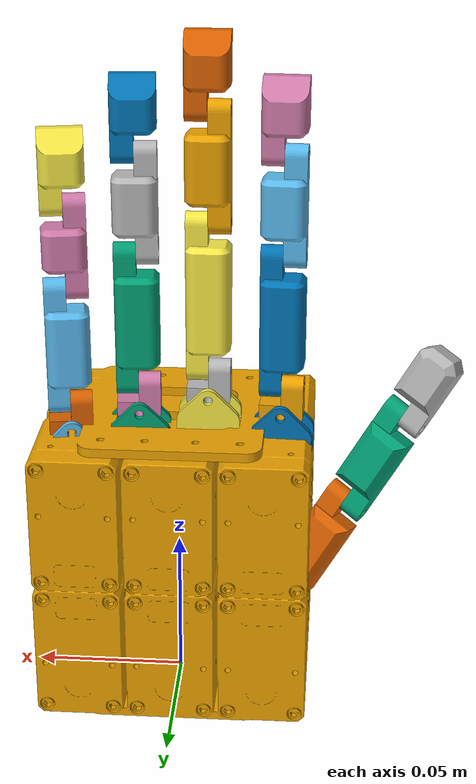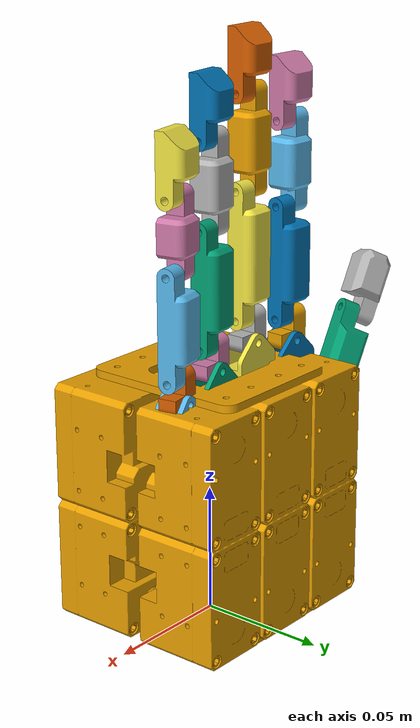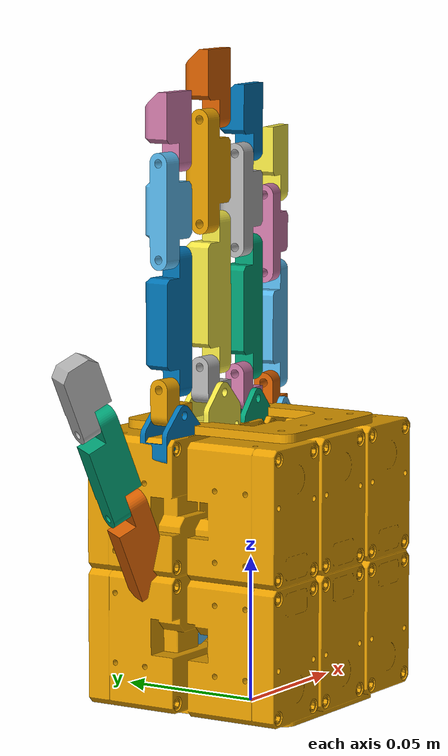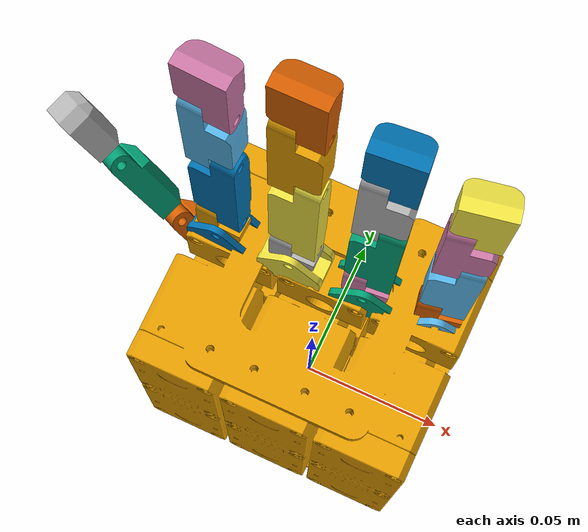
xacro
<?xml version="1.0" ?>
<robot name="URDF_Hand" xmlns:xacro="http://www.ros.org/wiki/xacro">

<xacro:arg name="mesh_url" default="package://helix_description" />

<xacro:include filename="$(find helix_description)/urdf/helix.materials.xacro" />

<link name="base_link">
  <inertial>
    <origin xyz="-0.0005471831423920315 -0.0016798569855821554 0.04631267638063307" rpy="0 0 0"/>
    <mass value="0.40903933360000916"/>
    <inertia ixx="0.000261" iyy="0.00052" izz="0.000266" ixy="-0.0" iyz="-1.4e-05" ixz="-5e-06"/>
  </inertial>
  <visual>
    <origin xyz="0 0 0" rpy="0 0 0"/>
    <geometry>
      <mesh filename="$(arg mesh_url)/meshes/base_link.stl" scale="0.001 0.001 0.001"/>
    </geometry>
    <material name="hand_base"/>
  </visual>
  <collision>
    <origin xyz="0 0 0" rpy="0 0 0"/>
    <geometry>
      <mesh filename="$(arg mesh_url)/meshes/base_link.stl" scale="0.001 0.001 0.001"/>
    </geometry>
  </collision>
</link>

<link name="Pinky_Base_1">
  <inertial>
    <origin xyz="-0.008376635559625957 0.004041231012048677 0.0016787722912364467" rpy="0 0 0"/>
    <mass value="0.01722650129403022"/>
    <inertia ixx="1e-06" iyy="1e-06" izz="1e-06" ixy="-0.0" iyz="-0.0" ixz="-0.0"/>
  </inertial>
  <visual>
    <origin xyz="-0.04166 -0.008898 -0.0855" rpy="0 0 0"/>
    <geometry>
      <mesh filename="$(arg mesh_url)/meshes/Pinky_Base_1.stl" scale="0.001 0.001 0.001"/>
    </geometry>
    <material name="finger_base"/>
  </visual>
  <collision>
    <origin xyz="-0.04166 -0.008898 -0.0855" rpy="0 0 0"/>
    <geometry>
      <mesh filename="$(arg mesh_url)/meshes/Pinky_Base_1.stl" scale="0.001 0.001 0.001"/>
    </geometry>
  </collision>
</link>

<link name="Ring_Base_1">
  <inertial>
    <origin xyz="-0.007951198591705913 0.004825194698091718 0.00167877229123653" rpy="0 0 0"/>
    <mass value="0.01722650129403022"/>
    <inertia ixx="1e-06" iyy="1e-06" izz="1e-06" ixy="-0.0" iyz="-0.0" ixz="-0.0"/>
  </inertial>
  <visual>
    <origin xyz="-0.019342 -0.005171 -0.0915" rpy="0 0 0"/>
    <geometry>
      <mesh filename="$(arg mesh_url)/meshes/Ring_Base_1.stl" scale="0.001 0.001 0.001"/>
    </geometry>
    <material name="finger_base"/>
  </visual>
  <collision>
    <origin xyz="-0.019342 -0.005171 -0.0915" rpy="0 0 0"/>
    <geometry>
      <mesh filename="$(arg mesh_url)/meshes/Ring_Base_1.stl" scale="0.001 0.001 0.001"/>
    </geometry>
  </collision>
</link>

<link name="Middle_Base_1">
  <inertial>
    <origin xyz="-0.007500042848958245 0.00550000000000005 0.0016787722912365716" rpy="0 0 0"/>
    <mass value="0.01722650129403022"/>
    <inertia ixx="1e-06" iyy="1e-06" izz="1e-06" ixy="0.0" iyz="-0.0" ixz="-0.0"/>
  </inertial>
  <visual>
    <origin xyz="0.003522 -0.0035 -0.0965" rpy="0 0 0"/>
    <geometry>
      <mesh filename="$(arg mesh_url)/meshes/Middle_Base_1.stl" scale="0.001 0.001 0.001"/>
    </geometry>
    <material name="finger_base"/>
  </visual>
  <collision>
    <origin xyz="0.003522 -0.0035 -0.0965" rpy="0 0 0"/>
    <geometry>
      <mesh filename="$(arg mesh_url)/meshes/Middle_Base_1.stl" scale="0.001 0.001 0.001"/>
    </geometry>
  </collision>
</link>

<link name="Index_Base_1">
  <inertial>
    <origin xyz="-0.007201714291713072 0.005885230272430774 0.0016787722912366132" rpy="0 0 0"/>
    <mass value="0.01722650129403022"/>
    <inertia ixx="1e-06" iyy="1e-06" izz="1e-06" ixy="0.0" iyz="0.0" ixz="-0.0"/>
  </inertial>
  <visual>
    <origin xyz="0.027097 -0.003767 -0.0915" rpy="0 0 0"/>
    <geometry>
      <mesh filename="$(arg mesh_url)/meshes/Index_Base_1.stl" scale="0.001 0.001 0.001"/>
    </geometry>
    <material name="finger_base"/>
  </visual>
  <collision>
    <origin xyz="0.027097 -0.003767 -0.0915" rpy="0 0 0"/>
    <geometry>
      <mesh filename="$(arg mesh_url)/meshes/Index_Base_1.stl" scale="0.001 0.001 0.001"/>
    </geometry>
  </collision>
</link>

<link name="Pinky_2dof_joint_1">
  <inertial>
    <origin xyz="-0.0006416335120010969 -0.0036788172469056583 0.0028828067230253634" rpy="0 0 0"/>
    <mass value="0.0074922865960129585"/>
    <inertia ixx="0.0" iyy="0.0" izz="0.0" ixy="-0.0" iyz="0.0" ixz="0.0"/>
  </inertial>
  <visual>
    <origin xyz="-0.032646 -0.016381 -0.0971" rpy="0 0 0"/>
    <geometry>
      <mesh filename="$(arg mesh_url)/meshes/Pinky_2dof_joint_1.stl" scale="0.001 0.001 0.001"/>
    </geometry>
    <material name="2dof_joint"/>
  </visual>
  <collision>
    <origin xyz="-0.032646 -0.016381 -0.0971" rpy="0 0 0"/>
    <geometry>
      <mesh filename="$(arg mesh_url)/meshes/Pinky_2dof_joint_1.stl" scale="0.001 0.001 0.001"/>
    </geometry>
  </collision>
</link>

<link name="Ring_2dof_joint_1">
  <inertial>
    <origin xyz="-0.000991028359982665 -0.00360017571648376 0.002882806723025405" rpy="0 0 0"/>
    <mass value="0.0074922865960129585"/>
    <inertia ixx="0.0" iyy="0.0" izz="0.0" ixy="-0.0" iyz="0.0" ixz="0.0"/>
  </inertial>
  <visual>
    <origin xyz="-0.011086 -0.013483 -0.1031" rpy="0 0 0"/>
    <geometry>
      <mesh filename="$(arg mesh_url)/meshes/Ring_2dof_joint_1.stl" scale="0.001 0.001 0.001"/>
    </geometry>
    <material name="2dof_joint"/>
  </visual>
  <collision>
    <origin xyz="-0.011086 -0.013483 -0.1031" rpy="0 0 0"/>
    <geometry>
      <mesh filename="$(arg mesh_url)/meshes/Ring_2dof_joint_1.stl" scale="0.001 0.001 0.001"/>
    </geometry>
  </collision>
</link>

<link name="Middle_2dof_joint_1">
  <inertial>
    <origin xyz="-0.0013008224764329435 -0.0034999999999918135 0.002882806723025322" rpy="0 0 0"/>
    <mass value="0.0074922865960129585"/>
    <inertia ixx="0.0" iyy="0.0" izz="0.0" ixy="0.0" iyz="-0.0" ixz="0.0"/>
  </inertial>
  <visual>
    <origin xyz="0.011022 -0.0125 -0.1081" rpy="0 0 0"/>
    <geometry>
      <mesh filename="$(arg mesh_url)/meshes/Middle_2dof_joint_1.stl" scale="0.001 0.001 0.001"/>
    </geometry>
    <material name="2dof_joint"/>
  </visual>
  <collision>
    <origin xyz="0.011022 -0.0125 -0.1081" rpy="0 0 0"/>
    <geometry>
      <mesh filename="$(arg mesh_url)/meshes/Middle_2dof_joint_1.stl" scale="0.001 0.001 0.001"/>
    </geometry>
  </collision>
</link>

<link name="Index_2dof_joint_1">
  <inertial>
    <origin xyz="-0.001481711245915833 -0.0034266921818958945 0.0028828067230253634" rpy="0 0 0"/>
    <mass value="0.0074922865960129585"/>
    <inertia ixx="0.0" iyy="0.0" izz="0.0" ixy="0.0" iyz="-0.0" ixz="0.0"/>
  </inertial>
  <visual>
    <origin xyz="0.034116 -0.013147 -0.1031" rpy="0 0 0"/>
    <geometry>
      <mesh filename="$(arg mesh_url)/meshes/Index_2dof_joint_1.stl" scale="0.001 0.001 0.001"/>
    </geometry>
    <material name="2dof_joint"/>
  </visual>
  <collision>
    <origin xyz="0.034116 -0.013147 -0.1031" rpy="0 0 0"/>
    <geometry>
      <mesh filename="$(arg mesh_url)/meshes/Index_2dof_joint_1.stl" scale="0.001 0.001 0.001"/>
    </geometry>
  </collision>
</link>

<link name="Pinky_Proximal_1">
  <inertial>
    <origin xyz="0.0004296237519091084 0.0013620375008921715 0.01924999999999988" rpy="0 0 0"/>
    <mass value="0.03429785225598032"/>
    <inertia ixx="4e-06" iyy="4e-06" izz="1e-06" ixy="-0.0" iyz="0.0" ixz="-0.0"/>
  </inertial>
  <visual>
    <origin xyz="-0.033283 -0.012939 -0.1061" rpy="0 0 0"/>
    <geometry>
      <mesh filename="$(arg mesh_url)/meshes/Pinky_Proximal_1.stl" scale="0.001 0.001 0.001"/>
    </geometry>
    <material name="proximal"/>
  </visual>
  <collision>
    <origin xyz="-0.033283 -0.012939 -0.1061" rpy="0 0 0"/>
    <geometry>
      <mesh filename="$(arg mesh_url)/meshes/Pinky_Proximal_1.stl" scale="0.001 0.001 0.001"/>
    </geometry>
  </collision>
</link>

<link name="Ring_Proximal_1">
  <inertial>
    <origin xyz="0.00046048424839711943 0.0013514120835756566 0.02174999999999988" rpy="0 0 0"/>
    <mass value="0.039861235764857395"/>
    <inertia ixx="5e-06" iyy="6e-06" izz="1e-06" ixy="0.0" iyz="0.0" ixz="-0.0"/>
  </inertial>
  <visual>
    <origin xyz="-0.011391 -0.009996 -0.1121" rpy="0 0 0"/>
    <geometry>
      <mesh filename="$(arg mesh_url)/meshes/Ring_Proximal_1.stl" scale="0.001 0.001 0.001"/>
    </geometry>
    <material name="proximal"/>
  </visual>
  <collision>
    <origin xyz="-0.011391 -0.009996 -0.1121" rpy="0 0 0"/>
    <geometry>
      <mesh filename="$(arg mesh_url)/meshes/Ring_Proximal_1.stl" scale="0.001 0.001 0.001"/>
    </geometry>
  </collision>
</link>

<link name="Middle_Proximal_1">
  <inertial>
    <origin xyz="0.0005060224053605369 0.0013400132977013316 0.02424999999999984" rpy="0 0 0"/>
    <mass value="0.045424619273734465"/>
    <inertia ixx="8e-06" iyy="8e-06" izz="1e-06" ixy="0.0" iyz="0.0" ixz="0.0"/>
  </inertial>
  <visual>
    <origin xyz="0.011022 -0.009 -0.1171" rpy="0 0 0"/>
    <geometry>
      <mesh filename="$(arg mesh_url)/meshes/Middle_Proximal_1.stl" scale="0.001 0.001 0.001"/>
    </geometry>
    <material name="proximal"/>
  </visual>
  <collision>
    <origin xyz="0.011022 -0.009 -0.1171" rpy="0 0 0"/>
    <geometry>
      <mesh filename="$(arg mesh_url)/meshes/Middle_Proximal_1.stl" scale="0.001 0.001 0.001"/>
    </geometry>
  </collision>
</link>

<link name="Index_Proximal_1">
  <inertial>
    <origin xyz="0.0006445383282672051 0.001274183043787739 0.021749999999999825" rpy="0 0 0"/>
    <mass value="0.039861235764857395"/>
    <inertia ixx="5e-06" iyy="6e-06" izz="1e-06" ixy="0.0" iyz="-0.0" ixz="0.0"/>
  </inertial>
  <visual>
    <origin xyz="0.034299 -0.009652 -0.1121" rpy="0 0 0"/>
    <geometry>
      <mesh filename="$(arg mesh_url)/meshes/Index_Proximal_1.stl" scale="0.001 0.001 0.001"/>
    </geometry>
    <material name="proximal"/>
  </visual>
  <collision>
    <origin xyz="0.034299 -0.009652 -0.1121" rpy="0 0 0"/>
    <geometry>
      <mesh filename="$(arg mesh_url)/meshes/Index_Proximal_1.stl" scale="0.001 0.001 0.001"/>
    </geometry>
  </collision>
</link>

<link name="Thumb_Metacarpal_1">
  <inertial>
    <origin xyz="-0.01359625260089315 -0.0017692298236901428 0.024370489575467436" rpy="0 0 0"/>
    <mass value="0.03702093284990669"/>
    <inertia ixx="5e-06" iyy="6e-06" izz="2e-06" ixy="0.0" iyz="0.0" ixz="2e-06"/>
  </inertial>
  <visual>
    <origin xyz="0.03087 -0.016337 -0.03092" rpy="0 0 0"/>
    <geometry>
      <mesh filename="$(arg mesh_url)/meshes/Thumb_Metacarpal_1.stl" scale="0.001 0.001 0.001"/>
    </geometry>
    <material name="proximal"/>
  </visual>
  <collision>
    <origin xyz="0.03087 -0.016337 -0.03092" rpy="0 0 0"/>
    <geometry>
      <mesh filename="$(arg mesh_url)/meshes/Thumb_Metacarpal_1.stl" scale="0.001 0.001 0.001"/>
    </geometry>
  </collision>
</link>

<link name="Pinky_Middle_1">
  <inertial>
    <origin xyz="-0.0012455090682285813 0.0008557896737158826 0.013499999999999901" rpy="0 0 0"/>
    <mass value="0.02150207018556307"/>
    <inertia ixx="1e-06" iyy="1e-06" izz="0.0" ixy="-0.0" iyz="0.0" ixz="-0.0"/>
  </inertial>
  <visual>
    <origin xyz="-0.033283 -0.012939 -0.1446" rpy="0 0 0"/>
    <geometry>
      <mesh filename="$(arg mesh_url)/meshes/Pinky_Middle_1.stl" scale="0.001 0.001 0.001"/>
    </geometry>
    <material name="middle"/>
  </visual>
  <collision>
    <origin xyz="-0.033283 -0.012939 -0.1446" rpy="0 0 0"/>
    <geometry>
      <mesh filename="$(arg mesh_url)/meshes/Pinky_Middle_1.stl" scale="0.001 0.001 0.001"/>
    </geometry>
  </collision>
</link>

<link name="Ring_Middle_1">
  <inertial>
    <origin xyz="-0.000948658567721217 0.0010960374234349358 0.015999999999999903" rpy="0 0 0"/>
    <mass value="0.02706545369444013"/>
    <inertia ixx="2e-06" iyy="2e-06" izz="1e-06" ixy="-0.0" iyz="-0.0" ixz="0.0"/>
  </inertial>
  <visual>
    <origin xyz="-0.011391 -0.009996 -0.1556" rpy="0 0 0"/>
    <geometry>
      <mesh filename="$(arg mesh_url)/meshes/Ring_Middle_1.stl" scale="0.001 0.001 0.001"/>
    </geometry>
    <material name="middle"/>
  </visual>
  <collision>
    <origin xyz="-0.011391 -0.009996 -0.1556" rpy="0 0 0"/>
    <geometry>
      <mesh filename="$(arg mesh_url)/meshes/Ring_Middle_1.stl" scale="0.001 0.001 0.001"/>
    </geometry>
  </collision>
</link>

<link name="Middle_Middle_1">
  <inertial>
    <origin xyz="-0.000756134540831243 0.001219342101717296 0.017499999999999877" rpy="0 0 0"/>
    <mass value="0.030403483799766377"/>
    <inertia ixx="3e-06" iyy="3e-06" izz="1e-06" ixy="-0.0" iyz="0.0" ixz="0.0"/>
  </inertial>
  <visual>
    <origin xyz="0.011022 -0.009 -0.1656" rpy="0 0 0"/>
    <geometry>
      <mesh filename="$(arg mesh_url)/meshes/Middle_Middle_1.stl" scale="0.001 0.001 0.001"/>
    </geometry>
    <material name="middle"/>
  </visual>
  <collision>
    <origin xyz="0.011022 -0.009 -0.1656" rpy="0 0 0"/>
    <geometry>
      <mesh filename="$(arg mesh_url)/meshes/Middle_Middle_1.stl" scale="0.001 0.001 0.001"/>
    </geometry>
  </collision>
</link>

<link name="Index_Middle_1">
  <inertial>
    <origin xyz="-0.000786432090189769 0.0012174084476994501 0.015999999999999903" rpy="0 0 0"/>
    <mass value="0.02706545369444013"/>
    <inertia ixx="2e-06" iyy="2e-06" izz="1e-06" ixy="-0.0" iyz="0.0" ixz="0.0"/>
  </inertial>
  <visual>
    <origin xyz="0.034299 -0.009652 -0.1556" rpy="0 0 0"/>
    <geometry>
      <mesh filename="$(arg mesh_url)/meshes/Index_Middle_1.stl" scale="0.001 0.001 0.001"/>
    </geometry>
    <material name="middle"/>
  </visual>
  <collision>
    <origin xyz="0.034299 -0.009652 -0.1556" rpy="0 0 0"/>
    <geometry>
      <mesh filename="$(arg mesh_url)/meshes/Index_Middle_1.stl" scale="0.001 0.001 0.001"/>
    </geometry>
  </collision>
</link>

<link name="Thumb_Proximal_1">
  <inertial>
    <origin xyz="-0.008305221388103537 0.0008328830917124254 0.015409951066476982" rpy="0 0 0"/>
    <mass value="0.028913628168106074"/>
    <inertia ixx="2e-06" iyy="3e-06" izz="1e-06" ixy="0.0" iyz="0.0" ixz="1e-06"/>
  </inertial>
  <visual>
    <origin xyz="0.055962 -0.013817 -0.074167" rpy="0 0 0"/>
    <geometry>
      <mesh filename="$(arg mesh_url)/meshes/Thumb_Proximal_1.stl" scale="0.001 0.001 0.001"/>
    </geometry>
    <material name="middle"/>
  </visual>
  <collision>
    <origin xyz="0.055962 -0.013817 -0.074167" rpy="0 0 0"/>
    <geometry>
      <mesh filename="$(arg mesh_url)/meshes/Thumb_Proximal_1.stl" scale="0.001 0.001 0.001"/>
    </geometry>
  </collision>
</link>

<link name="Pinky_Distal_1">
  <inertial>
    <origin xyz="0.0003897921226335907 0.001086136642043451 0.012319161138346219" rpy="0 0 0"/>
    <mass value="0.019789884505209417"/>
    <inertia ixx="1e-06" iyy="1e-06" izz="0.0" ixy="-0.0" iyz="0.0" ixz="0.0"/>
  </inertial>
  <visual>
    <origin xyz="-0.033283 -0.012939 -0.1716" rpy="0 0 0"/>
    <geometry>
      <mesh filename="$(arg mesh_url)/meshes/Pinky_Distal_1.stl" scale="0.001 0.001 0.001"/>
    </geometry>
    <material name="distal"/>
  </visual>
  <collision>
    <origin xyz="-0.033283 -0.012939 -0.1716" rpy="0 0 0"/>
    <geometry>
      <mesh filename="$(arg mesh_url)/meshes/Pinky_Distal_1.stl" scale="0.001 0.001 0.001"/>
    </geometry>
  </collision>
</link>

<link name="Ring_Distal_1">
  <inertial>
    <origin xyz="0.0004915156850270122 0.0010437760447156372 0.012319161138346219" rpy="0 0 0"/>
    <mass value="0.019789884505209417"/>
    <inertia ixx="1e-06" iyy="1e-06" izz="0.0" ixy="-0.0" iyz="0.0" ixz="0.0"/>
  </inertial>
  <visual>
    <origin xyz="-0.011391 -0.009996 -0.1876" rpy="0 0 0"/>
    <geometry>
      <mesh filename="$(arg mesh_url)/meshes/Ring_Distal_1.stl" scale="0.001 0.001 0.001"/>
    </geometry>
    <material name="distal"/>
  </visual>
  <collision>
    <origin xyz="-0.011391 -0.009996 -0.1876" rpy="0 0 0"/>
    <geometry>
      <mesh filename="$(arg mesh_url)/meshes/Ring_Distal_1.stl" scale="0.001 0.001 0.001"/>
    </geometry>
  </collision>
</link>

<link name="Middle_Distal_1">
  <inertial>
    <origin xyz="0.000580754413881706 0.0009967544815259813 0.012319161138346302" rpy="0 0 0"/>
    <mass value="0.019789884505209417"/>
    <inertia ixx="1e-06" iyy="1e-06" izz="0.0" ixy="0.0" iyz="-0.0" ixz="0.0"/>
  </inertial>
  <visual>
    <origin xyz="0.011022 -0.009 -0.2006" rpy="0 0 0"/>
    <geometry>
      <mesh filename="$(arg mesh_url)/meshes/Middle_Distal_1.stl" scale="0.001 0.001 0.001"/>
    </geometry>
    <material name="distal"/>
  </visual>
  <collision>
    <origin xyz="0.011022 -0.009 -0.2006" rpy="0 0 0"/>
    <geometry>
      <mesh filename="$(arg mesh_url)/meshes/Middle_Distal_1.stl" scale="0.001 0.001 0.001"/>
    </geometry>
  </collision>
</link>

<link name="Index_Distal_1">
  <inertial>
    <origin xyz="0.0006324531075937584 0.0009652221564475042 0.012319161138346219" rpy="0 0 0"/>
    <mass value="0.019789884505209417"/>
    <inertia ixx="1e-06" iyy="1e-06" izz="0.0" ixy="0.0" iyz="-0.0" ixz="0.0"/>
  </inertial>
  <visual>
    <origin xyz="0.034299 -0.009652 -0.1876" rpy="0 0 0"/>
    <geometry>
      <mesh filename="$(arg mesh_url)/meshes/Index_Distal_1.stl" scale="0.001 0.001 0.001"/>
    </geometry>
    <material name="distal"/>
  </visual>
  <collision>
    <origin xyz="0.034299 -0.009652 -0.1876" rpy="0 0 0"/>
    <geometry>
      <mesh filename="$(arg mesh_url)/meshes/Index_Distal_1.stl" scale="0.001 0.001 0.001"/>
    </geometry>
  </collision>
</link>

<link name="Thumb_Distal_1">
  <inertial>
    <origin xyz="-0.0067021018917190756 0.001123981716502775 0.011705331650145576" rpy="0 0 0"/>
    <mass value="0.02143536945168767"/>
    <inertia ixx="1e-06" iyy="1e-06" izz="1e-06" ixy="0.0" iyz="0.0" ixz="0.0"/>
  </inertial>
  <visual>
    <origin xyz="0.073263 -0.013776 -0.104592" rpy="0 0 0"/>
    <geometry>
      <mesh filename="$(arg mesh_url)/meshes/Thumb_Distal_1.stl" scale="0.001 0.001 0.001"/>
    </geometry>
    <material name="distal"/>
  </visual>
  <collision>
    <origin xyz="0.073263 -0.013776 -0.104592" rpy="0 0 0"/>
    <geometry>
      <mesh filename="$(arg mesh_url)/meshes/Thumb_Distal_1.stl" scale="0.001 0.001 0.001"/>
    </geometry>
  </collision>
</link>

<link name="Thumb_Base_1">
  <inertial>
    <origin xyz="-0.0022150122695184654 0.0071797206014117656 -0.00778895619931743" rpy="0 0 0"/>
    <mass value="0.019631240630742206"/>
    <inertia ixx="1e-06" iyy="1e-06" izz="1e-06" ixy="0.0" iyz="0.0" ixz="0.0"/>
  </inertial>
  <visual>
    <origin xyz="0.018032 -0.003966 -0.045336" rpy="0 0 0"/>
    <geometry>
      <mesh filename="$(arg mesh_url)/meshes/Thumb_Base_1.stl" scale="0.001 0.001 0.001"/>
    </geometry>
    <material name="finger_base"/>
  </visual>
  <collision>
    <origin xyz="0.018032 -0.003966 -0.045336" rpy="0 0 0"/>
    <geometry>
      <mesh filename="$(arg mesh_url)/meshes/Thumb_Base_1.stl" scale="0.001 0.001 0.001"/>
    </geometry>
  </collision>
</link>

<link name="Thumb_2dof_joint_1">
  <inertial>
    <origin xyz="-0.0009098329677024661 0.001066944068375937 -0.010524206941038762" rpy="0 0 0"/>
    <mass value="0.014036293256380273"/>
    <inertia ixx="1e-06" iyy="2e-06" izz="1e-06" ixy="0.0" iyz="0.0" ixz="0.0"/>
  </inertial>
  <visual>
    <origin xyz="0.026985 -0.012128 -0.043132" rpy="0 0 0"/>
    <geometry>
      <mesh filename="$(arg mesh_url)/meshes/Thumb_2dof_joint_1.stl" scale="0.001 0.001 0.001"/>
    </geometry>
    <material name="2dof_joint"/>
  </visual>
  <collision>
    <origin xyz="0.026985 -0.012128 -0.043132" rpy="0 0 0"/>
    <geometry>
      <mesh filename="$(arg mesh_url)/meshes/Thumb_2dof_joint_1.stl" scale="0.001 0.001 0.001"/>
    </geometry>
  </collision>
</link>

<joint name="Pinky_Base" type="fixed">
  <origin xyz="0.04166 0.008898 0.0855" rpy="0 0 0"/>
  <parent link="base_link"/>
  <child link="Pinky_Base_1"/>
</joint>

<joint name="Ring_Base" type="fixed">
  <origin xyz="0.019342 0.005171 0.0915" rpy="0 0 0"/>
  <parent link="base_link"/>
  <child link="Ring_Base_1"/>
</joint>

<joint name="Middle_Base" type="fixed">
  <origin xyz="-0.003522 0.0035 0.0965" rpy="0 0 0"/>
  <parent link="base_link"/>
  <child link="Middle_Base_1"/>
</joint>

<joint name="Index_Base" type="fixed">
  <origin xyz="-0.027097 0.003767 0.0915" rpy="0 0 0"/>
  <parent link="base_link"/>
  <child link="Index_Base_1"/>
</joint>

<joint name="Pinky_MCP_Orth" type="continuous">
  <origin xyz="-0.009014 0.007483 0.0116" rpy="0 0 0"/>
  <parent link="Pinky_Base_1"/>
  <child link="Pinky_2dof_joint_1"/>
  <axis xyz="-0.182236 0.983255 0.0"/>
</joint>

<joint name="Ring_MCP_Orth" type="continuous">
  <origin xyz="-0.008256 0.008312 0.0116" rpy="0 0 0"/>
  <parent link="Ring_Base_1"/>
  <child link="Ring_2dof_joint_1"/>
  <axis xyz="-0.087156 0.996195 0.0"/>
</joint>

<joint name="Middle_MCP_Orth" type="continuous">
  <origin xyz="-0.0075 0.009 0.0116" rpy="0 0 0"/>
  <parent link="Middle_Base_1"/>
  <child link="Middle_2dof_joint_1"/>
  <axis xyz="-0.0 1.0 0.0"/>
</joint>

<joint name="Index_MCP_Orth" type="continuous">
  <origin xyz="-0.007019 0.00938 0.0116" rpy="0 0 0"/>
  <parent link="Index_Base_1"/>
  <child link="Index_2dof_joint_1"/>
  <axis xyz="0.052336 0.99863 0.0"/>
</joint>

<joint name="Pinky_MCP" type="continuous">
  <origin xyz="0.000637 -0.003442 0.009" rpy="0 0 0"/>
  <parent link="Pinky_2dof_joint_1"/>
  <child link="Pinky_Proximal_1"/>
  <axis xyz="-0.983255 -0.182236 -0.0"/>
</joint>

<joint name="Ring_MCP" type="continuous">
  <origin xyz="0.000305 -0.003487 0.009" rpy="0 0 0"/>
  <parent link="Ring_2dof_joint_1"/>
  <child link="Ring_Proximal_1"/>
  <axis xyz="-0.996195 -0.087156 -0.0"/>
</joint>

<joint name="Middle_MCP" type="continuous">
  <origin xyz="0.0 -0.0035 0.009" rpy="0 0 0"/>
  <parent link="Middle_2dof_joint_1"/>
  <child link="Middle_Proximal_1"/>
  <axis xyz="-1.0 0.0 -0.0"/>
</joint>

<joint name="Index_MCP" type="continuous">
  <origin xyz="-0.000183 -0.003495 0.009" rpy="0 0 0"/>
  <parent link="Index_2dof_joint_1"/>
  <child link="Index_Proximal_1"/>
  <axis xyz="-0.99863 0.052336 -0.0"/>
</joint>

<joint name="Thumb_CMC_Orth" type="continuous">
  <origin xyz="-0.003885 0.004209 -0.012212" rpy="0 0 0"/>
  <parent link="Thumb_2dof_joint_1"/>
  <child link="Thumb_Metacarpal_1"/>
  <axis xyz="-0.150384 -0.984808 -0.086824"/>
</joint>

<joint name="Pinky_PIP" type="continuous">
  <origin xyz="0.0 0.0 0.0385" rpy="0 0 0"/>
  <parent link="Pinky_Proximal_1"/>
  <child link="Pinky_Middle_1"/>
  <axis xyz="-0.983255 -0.182236 0.0"/>
</joint>

<joint name="Ring_PIP" type="continuous">
  <origin xyz="0.0 0.0 0.0435" rpy="0 0 0"/>
  <parent link="Ring_Proximal_1"/>
  <child link="Ring_Middle_1"/>
  <axis xyz="-0.996195 -0.087156 0.0"/>
</joint>

<joint name="Middle_PIP" type="continuous">
  <origin xyz="0.0 0.0 0.0485" rpy="0 0 0"/>
  <parent link="Middle_Proximal_1"/>
  <child link="Middle_Middle_1"/>
  <axis xyz="-1.0 -0.0 0.0"/>
</joint>

<joint name="Index_PIP" type="continuous">
  <origin xyz="0.0 0.0 0.0435" rpy="0 0 0"/>
  <parent link="Index_Proximal_1"/>
  <child link="Index_Middle_1"/>
  <axis xyz="-0.99863 0.052336 0.0"/>
</joint>

<joint name="Thumb_MCP" type="continuous">
  <origin xyz="-0.025092 -0.00252 0.043247" rpy="0 0 0"/>
  <parent link="Thumb_Metacarpal_1"/>
  <child link="Thumb_Proximal_1"/>
  <axis xyz="-0.788081 0.422615 -0.447577"/>
</joint>

<joint name="Pinky_DIP" type="continuous">
  <origin xyz="0.0 0.0 0.027" rpy="0 0 0"/>
  <parent link="Pinky_Middle_1"/>
  <child link="Pinky_Distal_1"/>
  <axis xyz="-0.983255 -0.182236 0.0"/>
</joint>

<joint name="Ring_DIP" type="continuous">
  <origin xyz="0.0 0.0 0.032" rpy="0 0 0"/>
  <parent link="Ring_Middle_1"/>
  <child link="Ring_Distal_1"/>
  <axis xyz="-0.996195 -0.087156 0.0"/>
</joint>

<joint name="Middle_DIP" type="continuous">
  <origin xyz="0.0 0.0 0.035" rpy="0 0 0"/>
  <parent link="Middle_Middle_1"/>
  <child link="Middle_Distal_1"/>
  <axis xyz="-1.0 -0.0 0.0"/>
</joint>

<joint name="Index_DIP" type="continuous">
  <origin xyz="0.0 0.0 0.032" rpy="0 0 0"/>
  <parent link="Index_Middle_1"/>
  <child link="Index_Distal_1"/>
  <axis xyz="-0.99863 0.052336 0.0"/>
</joint>

<joint name="Thumb_IP" type="continuous">
  <origin xyz="-0.017301 -4.1e-05 0.030425" rpy="0 0 0"/>
  <parent link="Thumb_Proximal_1"/>
  <child link="Thumb_Distal_1"/>
  <axis xyz="-0.788081 0.422615 -0.447577"/>
</joint>

<joint name="Thumb_Base" type="fixed">
  <origin xyz="-0.018032 0.003966 0.045336" rpy="0 0 0"/>
  <parent link="base_link"/>
  <child link="Thumb_Base_1"/>
</joint>

<joint name="Thumb_CMC" type="continuous">
  <origin xyz="-0.008953 0.008162 -0.002204" rpy="0 0 0"/>
  <parent link="Thumb_Base_1"/>
  <child link="Thumb_2dof_joint_1"/>
  <axis xyz="0.494314 0.001155 -0.869283"/>
</joint>

</robot>

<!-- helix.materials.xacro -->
<robot xmlns:xacro="http://www.ros.org/wiki/xacro" >

  <material name="white">
    <color rgba="1 1 1 1"/>
  </material>
  <material name="black">
    <color rgba="0.2 0.2 0.2 1.0"/>
  </material>
  <material name='clear'>
    <color rgba="0.2 0.2 0.2 0.2"/>
  </material>

</robot>
